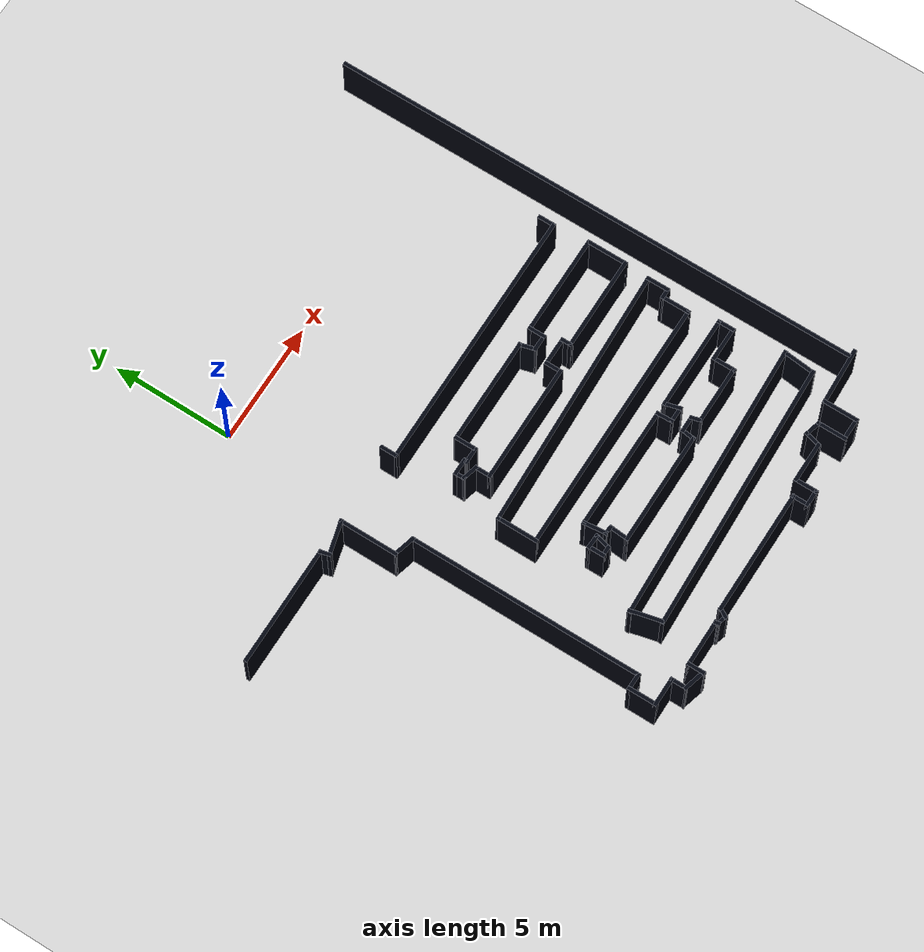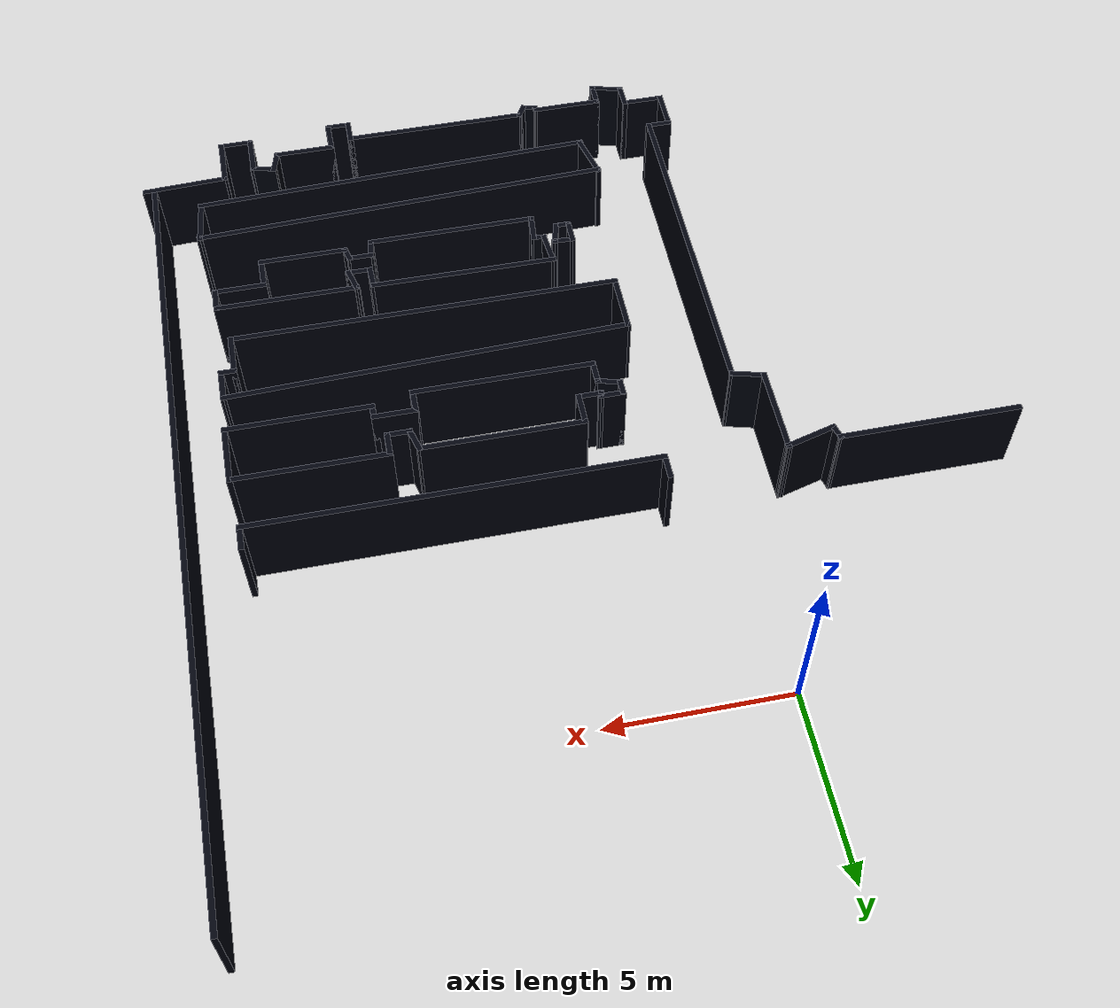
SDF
<sdf version="1.8">
 <world name="CDL_map">
  <model name="ground_plane">
   <static>1</static>
   <link name="link">
    <collision name="collision">
     <geometry><plane><normal>0 0 1</normal><size>100 100</size></plane></geometry>
    </collision>
    <visual name="visual">
     <geometry><plane><normal>0 0 1</normal><size>100 100</size></plane></geometry>
     <material>
      <ambient>0.8 0.8 0.8 1</ambient>
      <diffuse>0.8 0.8 0.8 1</diffuse>
      <specular>0.8 0.8 0.8 1</specular>
     </material>
     <plugin name="__default__" filename="__default__"/>
    </visual>
   </link>
   <plugin name="__default__" filename="__default__"/>
  </model>
  <model name="border">
   <pose>0 0 1 0 0 0</pose>
   <static>true</static>
   <link name="Wall_15">
    <pose>-4.98468 -5.83162 0 0 -0 0</pose>
    <static>true</static>
    <collision name="Wall_15_Collision"><geometry><box><size>5 0.15 2.5</size></box></geometry></collision>
    <visual name="Wall_15_Visual">
     <geometry><box><size>5 0.15 2.5</size></box></geometry>
     <material>
      <ambient>0.1 0.1 0.1 1</ambient>
      <diffuse>0 0.01 0.05 1</diffuse>
      <specular>0 0.01 0.05 1</specular>
     </material>
    </visual>
   </link>
   <link name="Wall_16">
    <pose>-2.51438 -6.00066 0 0 -0 -1.309</pose>
    <static>true</static>
    <collision name="Wall_16_Collision"><geometry><box><size>0.5 0.15 2.5</size></box></geometry></collision>
    <visual name="Wall_16_Visual">
     <geometry><box><size>0.5 0.15 2.5</size></box></geometry>
     <material>
      <ambient>0.1 0.1 0.1 1</ambient>
      <diffuse>0 0.01 0.05 1</diffuse>
      <specular>0 0.01 0.05 1</specular>
     </material>
    </visual>
   </link>
   <link name="Wall_17">
    <pose>-1.81709 -5.99499 0 0 -0 0.261799</pose>
    <static>true</static>
    <collision name="Wall_17_Collision"><geometry><box><size>1.5 0.15 2.5</size></box></geometry></collision>
    <visual name="Wall_17_Visual">
     <geometry><box><size>1.5 0.15 2.5</size></box></geometry>
     <material>
      <ambient>0.1 0.1 0.1 1</ambient>
      <diffuse>0 0.01 0.05 1</diffuse>
      <specular>0 0.01 0.05 1</specular>
     </material>
    </visual>
   </link>
   <link name="Wall_18">
    <pose>-1.16509 -6.99529 0 0 -0 -1.5708</pose>
    <static>true</static>
    <collision name="Wall_18_Collision"><geometry><box><size>2.5 0.15 2.5</size></box></geometry></collision>
    <visual name="Wall_18_Visual">
     <geometry><box><size>2.5 0.15 2.5</size></box></geometry>
     <material>
      <ambient>0.1 0.1 0.1 1</ambient>
      <diffuse>0 0.01 0.05 1</diffuse>
      <specular>0 0.01 0.05 1</specular>
     </material>
    </visual>
   </link>
   <link name="Wall_19">
    <pose>-0.754573 -8.28029 0 0 -0 -0.261799</pose>
    <static>true</static>
    <collision name="Wall_19_Collision"><geometry><box><size>1 0.15 2.5</size></box></geometry></collision>
    <visual name="Wall_19_Visual">
     <geometry><box><size>1 0.15 2.5</size></box></geometry>
     <material>
      <ambient>0.1 0.1 0.1 1</ambient>
      <diffuse>0 0.01 0.05 1</diffuse>
      <specular>0 0.01 0.05 1</specular>
     </material>
    </visual>
   </link>
   <link name="Wall_20">
    <pose>-0.344055 -13.1903 0 0 -0 -1.5708</pose>
    <static>true</static>
    <collision name="Wall_20_Collision"><geometry><box><size>9.75 0.15 2.5</size></box></geometry></collision>
    <visual name="Wall_20_Visual">
     <geometry><box><size>9.75 0.15 2.5</size></box></geometry>
     <material>
      <ambient>0.1 0.1 0.1 1</ambient>
      <diffuse>0 0.01 0.05 1</diffuse>
      <specular>0 0.01 0.05 1</specular>
     </material>
    </visual>
   </link>
   <link name="Wall_21">
    <pose>-0.644055 -17.9903 0 0 -0 3.14159</pose>
    <static>true</static>
    <collision name="Wall_21_Collision"><geometry><box><size>0.75 0.15 2.5</size></box></geometry></collision>
    <visual name="Wall_21_Visual">
     <geometry><box><size>0.75 0.15 2.5</size></box></geometry>
     <material>
      <ambient>0.1 0.1 0.1 1</ambient>
      <diffuse>0 0.01 0.05 1</diffuse>
      <specular>0 0.01 0.05 1</specular>
     </material>
    </visual>
   </link>
   <link name="Wall_22">
    <pose>-0.944055 -18.5403 0 0 -0 -1.5708</pose>
    <static>true</static>
    <collision name="Wall_22_Collision"><geometry><box><size>1.25 0.15 2.5</size></box></geometry></collision>
    <visual name="Wall_22_Visual">
     <geometry><box><size>1.25 0.15 2.5</size></box></geometry>
     <material>
      <ambient>0.1 0.1 0.1 1</ambient>
      <diffuse>0 0.01 0.05 1</diffuse>
      <specular>0 0.01 0.05 1</specular>
     </material>
    </visual>
   </link>
   <link name="Wall_23">
    <pose>-0.394055 -19.0903 0 0 -0 0</pose>
    <static>true</static>
    <collision name="Wall_23_Collision"><geometry><box><size>1.25 0.15 2.5</size></box></geometry></collision>
    <visual name="Wall_23_Visual">
     <geometry><box><size>1.25 0.15 2.5</size></box></geometry>
     <material>
      <ambient>0.1 0.1 0.1 1</ambient>
      <diffuse>0 0.01 0.05 1</diffuse>
      <specular>0 0.01 0.05 1</specular>
     </material>
    </visual>
   </link>
   <link name="Wall_231">
    <pose>12.8807 -5.82626 0 0 -0 -1.5708</pose>
    <static>true</static>
    <collision name="Wall_231_Collision"><geometry><box><size>0.75 0.15 2.5</size></box></geometry></collision>
    <visual name="Wall_231_Visual">
     <geometry><box><size>0.75 0.15 2.5</size></box></geometry>
     <material>
      <ambient>0.1 0.1 0.1 1</ambient>
      <diffuse>0 0.01 0.05 1</diffuse>
      <specular>0 0.01 0.05 1</specular>
     </material>
    </visual>
   </link>
   <link name="Wall_232">
    <pose>7.4557 -6.12626 0 0 -0 3.14159</pose>
    <static>true</static>
    <collision name="Wall_232_Collision"><geometry><box><size>11 0.15 2.5</size></box></geometry></collision>
    <visual name="Wall_232_Visual">
     <geometry><box><size>11 0.15 2.5</size></box></geometry>
     <material>
      <ambient>0.1 0.1 0.1 1</ambient>
      <diffuse>0 0.01 0.05 1</diffuse>
      <specular>0 0.01 0.05 1</specular>
     </material>
    </visual>
   </link>
   <link name="Wall_233">
    <pose>2.0307 -5.82626 0 0 -0 1.5708</pose>
    <static>true</static>
    <collision name="Wall_233_Collision"><geometry><box><size>0.75 0.15 2.5</size></box></geometry></collision>
    <visual name="Wall_233_Visual">
     <geometry><box><size>0.75 0.15 2.5</size></box></geometry>
     <material>
      <ambient>0.1 0.1 0.1 1</ambient>
      <diffuse>0 0.01 0.05 1</diffuse>
      <specular>0 0.01 0.05 1</specular>
     </material>
    </visual>
   </link>
   <link name="Wall_235">
    <pose>3.49579 -8.43866 0 0 -0 3.14159</pose>
    <static>true</static>
    <collision name="Wall_235_Collision"><geometry><box><size>0.75 0.15 2.5</size></box></geometry></collision>
    <visual name="Wall_235_Visual">
     <geometry><box><size>0.75 0.15 2.5</size></box></geometry>
     <material>
      <ambient>0.1 0.1 0.1 1</ambient>
      <diffuse>0 0.01 0.05 1</diffuse>
      <specular>0 0.01 0.05 1</specular>
     </material>
    </visual>
   </link>
   <link name="Wall_236">
    <pose>3.20873 -8.39036 0 0 -0 1.309</pose>
    <static>true</static>
    <collision name="Wall_236_Collision"><geometry><box><size>0.25 0.15 2.5</size></box></geometry></collision>
    <visual name="Wall_236_Visual">
     <geometry><box><size>0.25 0.15 2.5</size></box></geometry>
     <material>
      <ambient>0.1 0.1 0.1 1</ambient>
      <diffuse>0 0.01 0.05 1</diffuse>
      <specular>0 0.01 0.05 1</specular>
     </material>
    </visual>
   </link>
   <link name="Wall_237">
    <pose>2.92167 -8.34206 0 0 -0 3.14159</pose>
    <static>true</static>
    <collision name="Wall_237_Collision"><geometry><box><size>0.75 0.15 2.5</size></box></geometry></collision>
    <visual name="Wall_237_Visual">
     <geometry><box><size>0.75 0.15 2.5</size></box></geometry>
     <material>
      <ambient>0.1 0.1 0.1 1</ambient>
      <diffuse>0 0.01 0.05 1</diffuse>
      <specular>0 0.01 0.05 1</specular>
     </material>
    </visual>
   </link>
   <link name="Wall_238">
    <pose>2.62167 -8.51706 0 0 -0 -1.5708</pose>
    <static>true</static>
    <collision name="Wall_238_Collision"><geometry><box><size>0.5 0.15 2.5</size></box></geometry></collision>
    <visual name="Wall_238_Visual">
     <geometry><box><size>0.5 0.15 2.5</size></box></geometry>
     <material>
      <ambient>0.1 0.1 0.1 1</ambient>
      <diffuse>0 0.01 0.05 1</diffuse>
      <specular>0 0.01 0.05 1</specular>
     </material>
    </visual>
   </link>
   <link name="Wall_239">
    <pose>2.91145 -8.76971 0 0 -0 -0.261799</pose>
    <static>true</static>
    <collision name="Wall_239_Collision"><geometry><box><size>0.75 0.15 2.5</size></box></geometry></collision>
    <visual name="Wall_239_Visual">
     <geometry><box><size>0.75 0.15 2.5</size></box></geometry>
     <material>
      <ambient>0.1 0.1 0.1 1</ambient>
      <diffuse>0 0.01 0.05 1</diffuse>
      <specular>0 0.01 0.05 1</specular>
     </material>
    </visual>
   </link>
   <link name="Wall_24">
    <pose>0.155945 -19.3903 0 0 -0 -1.5708</pose>
    <static>true</static>
    <collision name="Wall_24_Collision"><geometry><box><size>0.75 0.15 2.5</size></box></geometry></collision>
    <visual name="Wall_24_Visual">
     <geometry><box><size>0.75 0.15 2.5</size></box></geometry>
     <material>
      <ambient>0.1 0.1 0.1 1</ambient>
      <diffuse>0 0.01 0.05 1</diffuse>
      <specular>0 0.01 0.05 1</specular>
     </material>
    </visual>
   </link>
   <link name="Wall_240">
    <pose>3.20123 -9.14735 0 0 -0 -1.5708</pose>
    <static>true</static>
    <collision name="Wall_240_Collision"><geometry><box><size>0.75 0.15 2.5</size></box></geometry></collision>
    <visual name="Wall_240_Visual">
     <geometry><box><size>0.75 0.15 2.5</size></box></geometry>
     <material>
      <ambient>0.1 0.1 0.1 1</ambient>
      <diffuse>0 0.01 0.05 1</diffuse>
      <specular>0 0.01 0.05 1</specular>
     </material>
    </visual>
   </link>
   <link name="Wall_241">
    <pose>5.62623 -9.44735 0 0 -0 0</pose>
    <static>true</static>
    <collision name="Wall_241_Collision"><geometry><box><size>5 0.15 2.5</size></box></geometry></collision>
    <visual name="Wall_241_Visual">
     <geometry><box><size>5 0.15 2.5</size></box></geometry>
     <material>
      <ambient>0.1 0.1 0.1 1</ambient>
      <diffuse>0 0.01 0.05 1</diffuse>
      <specular>0 0.01 0.05 1</specular>
     </material>
    </visual>
   </link>
   <link name="Wall_242">
    <pose>8.05123 -9.14735 0 0 -0 1.5708</pose>
    <static>true</static>
    <collision name="Wall_242_Collision"><geometry><box><size>0.75 0.15 2.5</size></box></geometry></collision>
    <visual name="Wall_242_Visual">
     <geometry><box><size>0.75 0.15 2.5</size></box></geometry>
     <material>
      <ambient>0.1 0.1 0.1 1</ambient>
      <diffuse>0 0.01 0.05 1</diffuse>
      <specular>0 0.01 0.05 1</specular>
     </material>
    </visual>
   </link>
   <link name="Wall_243">
    <pose>8.60123 -8.84735 0 0 -0 0</pose>
    <static>true</static>
    <collision name="Wall_243_Collision"><geometry><box><size>1.25 0.15 2.5</size></box></geometry></collision>
    <visual name="Wall_243_Visual">
     <geometry><box><size>1.25 0.15 2.5</size></box></geometry>
     <material>
      <ambient>0.1 0.1 0.1 1</ambient>
      <diffuse>0 0.01 0.05 1</diffuse>
      <specular>0 0.01 0.05 1</specular>
     </material>
    </visual>
   </link>
   <link name="Wall_244">
    <pose>9.15123 -9.02235 0 0 -0 -1.5708</pose>
    <static>true</static>
    <collision name="Wall_244_Collision"><geometry><box><size>0.5 0.15 2.5</size></box></geometry></collision>
    <visual name="Wall_244_Visual">
     <geometry><box><size>0.5 0.15 2.5</size></box></geometry>
     <material>
      <ambient>0.1 0.1 0.1 1</ambient>
      <diffuse>0 0.01 0.05 1</diffuse>
      <specular>0 0.01 0.05 1</specular>
     </material>
    </visual>
   </link>
   <link name="Wall_245">
    <pose>11.0762 -9.19735 0 0 -0 0</pose>
    <static>true</static>
    <collision name="Wall_245_Collision"><geometry><box><size>4 0.15 2.5</size></box></geometry></collision>
    <visual name="Wall_245_Visual">
     <geometry><box><size>4 0.15 2.5</size></box></geometry>
     <material>
      <ambient>0.1 0.1 0.1 1</ambient>
      <diffuse>0 0.01 0.05 1</diffuse>
      <specular>0 0.01 0.05 1</specular>
     </material>
    </visual>
   </link>
   <link name="Wall_246">
    <pose>13.0012 -8.39735 0 0 -0 1.5708</pose>
    <static>true</static>
    <collision name="Wall_246_Collision"><geometry><box><size>1.75 0.15 2.5</size></box></geometry></collision>
    <visual name="Wall_246_Visual">
     <geometry><box><size>1.75 0.15 2.5</size></box></geometry>
     <material>
      <ambient>0.1 0.1 0.1 1</ambient>
      <diffuse>0 0.01 0.05 1</diffuse>
      <specular>0 0.01 0.05 1</specular>
     </material>
    </visual>
   </link>
   <link name="Wall_247">
    <pose>10.9512 -7.59735 0 0 -0 3.14159</pose>
    <static>true</static>
    <collision name="Wall_247_Collision"><geometry><box><size>4.25 0.15 2.5</size></box></geometry></collision>
    <visual name="Wall_247_Visual">
     <geometry><box><size>4.25 0.15 2.5</size></box></geometry>
     <material>
      <ambient>0.1 0.1 0.1 1</ambient>
      <diffuse>0 0.01 0.05 1</diffuse>
      <specular>0 0.01 0.05 1</specular>
     </material>
    </visual>
   </link>
   <link name="Wall_248">
    <pose>8.90123 -7.89735 0 0 -0 -1.5708</pose>
    <static>true</static>
    <collision name="Wall_248_Collision"><geometry><box><size>0.75 0.15 2.5</size></box></geometry></collision>
    <visual name="Wall_248_Visual">
     <geometry><box><size>0.75 0.15 2.5</size></box></geometry>
     <material>
      <ambient>0.1 0.1 0.1 1</ambient>
      <diffuse>0 0.01 0.05 1</diffuse>
      <specular>0 0.01 0.05 1</specular>
     </material>
    </visual>
   </link>
   <link name="Wall_249">
    <pose>8.60123 -8.19735 0 0 -0 3.14159</pose>
    <static>true</static>
    <collision name="Wall_249_Collision"><geometry><box><size>0.75 0.15 2.5</size></box></geometry></collision>
    <visual name="Wall_249_Visual">
     <geometry><box><size>0.75 0.15 2.5</size></box></geometry>
     <material>
      <ambient>0.1 0.1 0.1 1</ambient>
      <diffuse>0 0.01 0.05 1</diffuse>
      <specular>0 0.01 0.05 1</specular>
     </material>
    </visual>
   </link>
   <link name="Wall_25">
    <pose>0.566464 -19.8003 0 0 -0 -0.261799</pose>
    <static>true</static>
    <collision name="Wall_25_Collision"><geometry><box><size>1 0.15 2.5</size></box></geometry></collision>
    <visual name="Wall_25_Visual">
     <geometry><box><size>1 0.15 2.5</size></box></geometry>
     <material>
      <ambient>0.1 0.1 0.1 1</ambient>
      <diffuse>0 0.01 0.05 1</diffuse>
      <specular>0 0.01 0.05 1</specular>
     </material>
    </visual>
   </link>
   <link name="Wall_250">
    <pose>8.22358 -7.90758 0 0 -0 1.8326</pose>
    <static>true</static>
    <collision name="Wall_250_Collision"><geometry><box><size>0.75 0.15 2.5</size></box></geometry></collision>
    <visual name="Wall_250_Visual">
     <geometry><box><size>0.75 0.15 2.5</size></box></geometry>
     <material>
      <ambient>0.1 0.1 0.1 1</ambient>
      <diffuse>0 0.01 0.05 1</diffuse>
      <specular>0 0.01 0.05 1</specular>
     </material>
    </visual>
   </link>
   <link name="Wall_251">
    <pose>5.97094 -7.6178 0 0 -0 3.14159</pose>
    <static>true</static>
    <collision name="Wall_251_Collision"><geometry><box><size>4.5 0.15 2.5</size></box></geometry></collision>
    <visual name="Wall_251_Visual">
     <geometry><box><size>4.5 0.15 2.5</size></box></geometry>
     <material>
      <ambient>0.1 0.1 0.1 1</ambient>
      <diffuse>0 0.01 0.05 1</diffuse>
      <specular>0 0.01 0.05 1</specular>
     </material>
    </visual>
   </link>
   <link name="Wall_252">
    <pose>3.79586 -8.02823 0 0 -0 -1.57097</pose>
    <static>true</static>
    <collision name="Wall_252_Collision">
     <geometry><box><size>0.970857 0.15 2.5</size></box></geometry>
    </collision>
    <visual name="Wall_252_Visual">
     <geometry><box><size>0.970857 0.15 2.5</size></box></geometry>
     <material>
      <ambient>0.1 0.1 0.1 1</ambient>
      <diffuse>0 0.01 0.05 1</diffuse>
      <specular>0 0.01 0.05 1</specular>
     </material>
    </visual>
   </link>
   <link name="Wall_254">
    <pose>1.98946 -11.3875 0 0 -0 -1.5708</pose>
    <static>true</static>
    <collision name="Wall_254_Collision"><geometry><box><size>1.75 0.15 2.5</size></box></geometry></collision>
    <visual name="Wall_254_Visual">
     <geometry><box><size>1.75 0.15 2.5</size></box></geometry>
     <material>
      <ambient>0.1 0.1 0.1 1</ambient>
      <diffuse>0 0.01 0.05 1</diffuse>
      <specular>0 0.01 0.05 1</specular>
     </material>
    </visual>
   </link>
   <link name="Wall_255">
    <pose>7.28946 -12.1875 0 0 -0 0</pose>
    <static>true</static>
    <collision name="Wall_255_Collision"><geometry><box><size>10.75 0.15 2.5</size></box></geometry></collision>
    <visual name="Wall_255_Visual">
     <geometry><box><size>10.75 0.15 2.5</size></box></geometry>
     <material>
      <ambient>0.1 0.1 0.1 1</ambient>
      <diffuse>0 0.01 0.05 1</diffuse>
      <specular>0 0.01 0.05 1</specular>
     </material>
    </visual>
   </link>
   <link name="Wall_256">
    <pose>12.5895 -11.6375 0 0 -0 1.5708</pose>
    <static>true</static>
    <collision name="Wall_256_Collision"><geometry><box><size>1.25 0.15 2.5</size></box></geometry></collision>
    <visual name="Wall_256_Visual">
     <geometry><box><size>1.25 0.15 2.5</size></box></geometry>
     <material>
      <ambient>0.1 0.1 0.1 1</ambient>
      <diffuse>0 0.01 0.05 1</diffuse>
      <specular>0 0.01 0.05 1</specular>
     </material>
    </visual>
   </link>
   <link name="Wall_257">
    <pose>12.7645 -11.0875 0 0 -0 0</pose>
    <static>true</static>
    <collision name="Wall_257_Collision"><geometry><box><size>0.5 0.15 2.5</size></box></geometry></collision>
    <visual name="Wall_257_Visual">
     <geometry><box><size>0.5 0.15 2.5</size></box></geometry>
     <material>
      <ambient>0.1 0.1 0.1 1</ambient>
      <diffuse>0 0.01 0.05 1</diffuse>
      <specular>0 0.01 0.05 1</specular>
     </material>
    </visual>
   </link>
   <link name="Wall_258">
    <pose>12.9395 -10.6625 0 0 -0 1.5708</pose>
    <static>true</static>
    <collision name="Wall_258_Collision"><geometry><box><size>1 0.15 2.5</size></box></geometry></collision>
    <visual name="Wall_258_Visual">
     <geometry><box><size>1 0.15 2.5</size></box></geometry>
     <material>
      <ambient>0.1 0.1 0.1 1</ambient>
      <diffuse>0 0.01 0.05 1</diffuse>
      <specular>0 0.01 0.05 1</specular>
     </material>
    </visual>
   </link>
   <link name="Wall_259">
    <pose>7.46446 -10.4125 0 0 -0 -3.10964</pose>
    <static>true</static>
    <collision name="Wall_259_Collision"><geometry><box><size>11.1056 0.15 2.5</size></box></geometry></collision>
    <visual name="Wall_259_Visual">
     <geometry><box><size>11.1056 0.15 2.5</size></box></geometry>
     <material>
      <ambient>0.1 0.1 0.1 1</ambient>
      <diffuse>0 0.01 0.05 1</diffuse>
      <specular>0 0.01 0.05 1</specular>
     </material>
    </visual>
   </link>
   <link name="Wall_26">
    <pose>0.976982 -19.6103 0 0 -0 1.5708</pose>
    <static>true</static>
    <collision name="Wall_26_Collision"><geometry><box><size>0.75 0.15 2.5</size></box></geometry></collision>
    <visual name="Wall_26_Visual">
     <geometry><box><size>0.75 0.15 2.5</size></box></geometry>
     <material>
      <ambient>0.1 0.1 0.1 1</ambient>
      <diffuse>0 0.01 0.05 1</diffuse>
      <specular>0 0.01 0.05 1</specular>
     </material>
    </visual>
   </link>
   <link name="Wall_261">
    <pose>2.8255 -14.2439 0 0 -0 -1.5708</pose>
    <static>true</static>
    <collision name="Wall_261_Collision"><geometry><box><size>0.75 0.15 2.5</size></box></geometry></collision>
    <visual name="Wall_261_Visual">
     <geometry><box><size>0.75 0.15 2.5</size></box></geometry>
     <material>
      <ambient>0.1 0.1 0.1 1</ambient>
      <diffuse>0 0.01 0.05 1</diffuse>
      <specular>0 0.01 0.05 1</specular>
     </material>
    </visual>
   </link>
   <link name="Wall_262">
    <pose>3.0005 -14.5439 0 0 -0 0</pose>
    <static>true</static>
    <collision name="Wall_262_Collision"><geometry><box><size>0.5 0.15 2.5</size></box></geometry></collision>
    <visual name="Wall_262_Visual">
     <geometry><box><size>0.5 0.15 2.5</size></box></geometry>
     <material>
      <ambient>0.1 0.1 0.1 1</ambient>
      <diffuse>0 0.01 0.05 1</diffuse>
      <specular>0 0.01 0.05 1</specular>
     </material>
    </visual>
   </link>
   <link name="Wall_263">
    <pose>3.25314 -14.2542 0 0 -0 1.309</pose>
    <static>true</static>
    <collision name="Wall_263_Collision"><geometry><box><size>0.75 0.15 2.5</size></box></geometry></collision>
    <visual name="Wall_263_Visual">
     <geometry><box><size>0.75 0.15 2.5</size></box></geometry>
     <material>
      <ambient>0.1 0.1 0.1 1</ambient>
      <diffuse>0 0.01 0.05 1</diffuse>
      <specular>0 0.01 0.05 1</specular>
     </material>
    </visual>
   </link>
   <link name="Wall_264">
    <pose>3.07814 -13.9542 0 0 -0 3.10115</pose>
    <static>true</static>
    <collision name="Wall_264_Collision">
     <geometry><box><size>0.655705 0.15 2.5</size></box></geometry>
    </collision>
    <visual name="Wall_264_Visual">
     <geometry><box><size>0.655705 0.15 2.5</size></box></geometry>
     <material>
      <ambient>0.1 0.1 0.1 1</ambient>
      <diffuse>0 0.01 0.05 1</diffuse>
      <specular>0 0.01 0.05 1</specular>
     </material>
    </visual>
   </link>
   <link name="Wall_266">
    <pose>6.02506 -13.3231 0 0 -0 -0.007308</pose>
    <static>true</static>
    <collision name="Wall_266_Collision"><geometry><box><size>5.19685 0.15 2.5</size></box></geometry></collision>
    <visual name="Wall_266_Visual">
     <geometry><box><size>5.19685 0.15 2.5</size></box></geometry>
     <material>
      <ambient>0.1 0.1 0.1 1</ambient>
      <diffuse>0 0.01 0.05 1</diffuse>
      <specular>0 0.01 0.05 1</specular>
     </material>
    </visual>
   </link>
   <link name="Wall_267">
    <pose>8.57074 -13.6374 0 0 -0 -1.53693</pose>
    <static>true</static>
    <collision name="Wall_267_Collision"><geometry><box><size>0.74219 0.15 2.5</size></box></geometry></collision>
    <visual name="Wall_267_Visual">
     <geometry><box><size>0.74219 0.15 2.5</size></box></geometry>
     <material>
      <ambient>0.1 0.1 0.1 1</ambient>
      <diffuse>0 0.01 0.05 1</diffuse>
      <specular>0 0.01 0.05 1</specular>
     </material>
    </visual>
   </link>
   <link name="Wall_268">
    <pose>8.88076 -13.9333 0 0 -0 0</pose>
    <static>true</static>
    <collision name="Wall_268_Collision"><geometry><box><size>0.75 0.15 2.5</size></box></geometry></collision>
    <visual name="Wall_268_Visual">
     <geometry><box><size>0.75 0.15 2.5</size></box></geometry>
     <material>
      <ambient>0.1 0.1 0.1 1</ambient>
      <diffuse>0 0.01 0.05 1</diffuse>
      <specular>0 0.01 0.05 1</specular>
     </material>
    </visual>
   </link>
   <link name="Wall_269">
    <pose>9.10312 -13.6436 0 0 -0 1.8326</pose>
    <static>true</static>
    <collision name="Wall_269_Collision"><geometry><box><size>0.75 0.15 2.5</size></box></geometry></collision>
    <visual name="Wall_269_Visual">
     <geometry><box><size>0.75 0.15 2.5</size></box></geometry>
     <material>
      <ambient>0.1 0.1 0.1 1</ambient>
      <diffuse>0 0.01 0.05 1</diffuse>
      <specular>0 0.01 0.05 1</specular>
     </material>
    </visual>
   </link>
   <link name="Wall_27">
    <pose>1.90198 -19.3103 0 0 -0 0</pose>
    <static>true</static>
    <collision name="Wall_27_Collision"><geometry><box><size>2 0.15 2.5</size></box></geometry></collision>
    <visual name="Wall_27_Visual">
     <geometry><box><size>2 0.15 2.5</size></box></geometry>
     <material>
      <ambient>0.1 0.1 0.1 1</ambient>
      <diffuse>0 0.01 0.05 1</diffuse>
      <specular>0 0.01 0.05 1</specular>
     </material>
    </visual>
   </link>
   <link name="Wall_270">
    <pose>10.9505 -13.3538 0 0 -0 0</pose>
    <static>true</static>
    <collision name="Wall_270_Collision"><geometry><box><size>4 0.15 2.5</size></box></geometry></collision>
    <visual name="Wall_270_Visual">
     <geometry><box><size>4 0.15 2.5</size></box></geometry>
     <material>
      <ambient>0.1 0.1 0.1 1</ambient>
      <diffuse>0 0.01 0.05 1</diffuse>
      <specular>0 0.01 0.05 1</specular>
     </material>
    </visual>
   </link>
   <link name="Wall_271">
    <pose>12.8755 -13.6538 0 0 -0 -1.5708</pose>
    <static>true</static>
    <collision name="Wall_271_Collision"><geometry><box><size>0.75 0.15 2.5</size></box></geometry></collision>
    <visual name="Wall_271_Visual">
     <geometry><box><size>0.75 0.15 2.5</size></box></geometry>
     <material>
      <ambient>0.1 0.1 0.1 1</ambient>
      <diffuse>0 0.01 0.05 1</diffuse>
      <specular>0 0.01 0.05 1</specular>
     </material>
    </visual>
   </link>
   <link name="Wall_272">
    <pose>12.2005 -13.9538 0 0 -0 3.14159</pose>
    <static>true</static>
    <collision name="Wall_272_Collision"><geometry><box><size>1.5 0.15 2.5</size></box></geometry></collision>
    <visual name="Wall_272_Visual">
     <geometry><box><size>1.5 0.15 2.5</size></box></geometry>
     <material>
      <ambient>0.1 0.1 0.1 1</ambient>
      <diffuse>0 0.01 0.05 1</diffuse>
      <specular>0 0.01 0.05 1</specular>
     </material>
    </visual>
   </link>
   <link name="Wall_273">
    <pose>11.5255 -14.3788 0 0 -0 -1.5708</pose>
    <static>true</static>
    <collision name="Wall_273_Collision"><geometry><box><size>1 0.15 2.5</size></box></geometry></collision>
    <visual name="Wall_273_Visual">
     <geometry><box><size>1 0.15 2.5</size></box></geometry>
     <material>
      <ambient>0.1 0.1 0.1 1</ambient>
      <diffuse>0 0.01 0.05 1</diffuse>
      <specular>0 0.01 0.05 1</specular>
     </material>
    </visual>
   </link>
   <link name="Wall_274">
    <pose>10.3505 -14.8038 0 0 -0 3.14159</pose>
    <static>true</static>
    <collision name="Wall_274_Collision"><geometry><box><size>2.5 0.15 2.5</size></box></geometry></collision>
    <visual name="Wall_274_Visual">
     <geometry><box><size>2.5 0.15 2.5</size></box></geometry>
     <material>
      <ambient>0.1 0.1 0.1 1</ambient>
      <diffuse>0 0.01 0.05 1</diffuse>
      <specular>0 0.01 0.05 1</specular>
     </material>
    </visual>
   </link>
   <link name="Wall_275">
    <pose>9.13018 -14.6348 0 0 -0 1.8326</pose>
    <static>true</static>
    <collision name="Wall_275_Collision"><geometry><box><size>0.5 0.15 2.5</size></box></geometry></collision>
    <visual name="Wall_275_Visual">
     <geometry><box><size>0.5 0.15 2.5</size></box></geometry>
     <material>
      <ambient>0.1 0.1 0.1 1</ambient>
      <diffuse>0 0.01 0.05 1</diffuse>
      <specular>0 0.01 0.05 1</specular>
     </material>
    </visual>
   </link>
   <link name="Wall_276">
    <pose>8.78488 -14.4657 0 0 -0 3.14159</pose>
    <static>true</static>
    <collision name="Wall_276_Collision"><geometry><box><size>0.75 0.15 2.5</size></box></geometry></collision>
    <visual name="Wall_276_Visual">
     <geometry><box><size>0.75 0.15 2.5</size></box></geometry>
     <material>
      <ambient>0.1 0.1 0.1 1</ambient>
      <diffuse>0 0.01 0.05 1</diffuse>
      <specular>0 0.01 0.05 1</specular>
     </material>
    </visual>
   </link>
   <link name="Wall_277">
    <pose>8.45415 -14.7022 0 0 -0 -1.70005</pose>
    <static>true</static>
    <collision name="Wall_277_Collision">
     <geometry><box><size>0.626925 0.15 2.5</size></box></geometry>
    </collision>
    <visual name="Wall_277_Visual">
     <geometry><box><size>0.626925 0.15 2.5</size></box></geometry>
     <material>
      <ambient>0.1 0.1 0.1 1</ambient>
      <diffuse>0 0.01 0.05 1</diffuse>
      <specular>0 0.01 0.05 1</specular>
     </material>
    </visual>
   </link>
   <link name="Wall_278">
    <pose>6.12341 -14.951 0 0 -0 3.14159</pose>
    <static>true</static>
    <collision name="Wall_278_Collision"><geometry><box><size>4.75 0.15 2.5</size></box></geometry></collision>
    <visual name="Wall_278_Visual">
     <geometry><box><size>4.75 0.15 2.5</size></box></geometry>
     <material>
      <ambient>0.1 0.1 0.1 1</ambient>
      <diffuse>0 0.01 0.05 1</diffuse>
      <specular>0 0.01 0.05 1</specular>
     </material>
    </visual>
   </link>
   <link name="Wall_279">
    <pose>3.85415 -14.5772 0 0 -0 1.48597</pose>
    <static>true</static>
    <collision name="Wall_279_Collision">
     <geometry><box><size>0.874618 0.15 2.5</size></box></geometry>
    </collision>
    <visual name="Wall_279_Visual">
     <geometry><box><size>0.874618 0.15 2.5</size></box></geometry>
     <material>
      <ambient>0.1 0.1 0.1 1</ambient>
      <diffuse>0 0.01 0.05 1</diffuse>
      <specular>0 0.01 0.05 1</specular>
     </material>
    </visual>
   </link>
   <link name="Wall_28">
    <pose>2.83992 -19.3586 0 0 -0 -1.309</pose>
    <static>true</static>
    <collision name="Wall_28_Collision"><geometry><box><size>0.25 0.15 2.5</size></box></geometry></collision>
    <visual name="Wall_28_Visual">
     <geometry><box><size>0.25 0.15 2.5</size></box></geometry>
     <material>
      <ambient>0.1 0.1 0.1 1</ambient>
      <diffuse>0 0.01 0.05 1</diffuse>
      <specular>0 0.01 0.05 1</specular>
     </material>
    </visual>
   </link>
   <link name="Wall_280">
    <pose>3.73653 -14.1973 0 0 -0 3.01792</pose>
    <static>true</static>
    <collision name="Wall_280_Collision">
     <geometry><box><size>0.448999 0.15 2.5</size></box></geometry>
    </collision>
    <visual name="Wall_280_Visual">
     <geometry><box><size>0.448999 0.15 2.5</size></box></geometry>
     <material>
      <ambient>0.1 0.1 0.1 1</ambient>
      <diffuse>0 0.01 0.05 1</diffuse>
      <specular>0 0.01 0.05 1</specular>
     </material>
    </visual>
   </link>
   <link name="Wall_281">
    <pose>3.55723 -13.7417 0 0 -0 1.66938</pose>
    <static>true</static>
    <collision name="Wall_281_Collision"><geometry><box><size>1.02849 0.15 2.5</size></box></geometry></collision>
    <visual name="Wall_281_Visual">
     <geometry><box><size>1.02849 0.15 2.5</size></box></geometry>
     <material>
      <ambient>0.1 0.1 0.1 1</ambient>
      <diffuse>0 0.01 0.05 1</diffuse>
      <specular>0 0.01 0.05 1</specular>
     </material>
    </visual>
   </link>
   <link name="Wall_283">
    <pose>1.68755 -17.0586 0 0 -0 -1.3373</pose>
    <static>true</static>
    <collision name="Wall_283_Collision"><geometry><box><size>1.38979 0.15 2.5</size></box></geometry></collision>
    <visual name="Wall_283_Visual">
     <geometry><box><size>1.38979 0.15 2.5</size></box></geometry>
     <material>
      <ambient>0.1 0.1 0.1 1</ambient>
      <diffuse>0 0.01 0.05 1</diffuse>
      <specular>0 0.01 0.05 1</specular>
     </material>
    </visual>
   </link>
   <link name="Wall_284">
    <pose>7.41633 -17.5062 0 0 -0 0.035336</pose>
    <static>true</static>
    <collision name="Wall_284_Collision"><geometry><box><size>11.356 0.15 2.5</size></box></geometry></collision>
    <visual name="Wall_284_Visual">
     <geometry><box><size>11.356 0.15 2.5</size></box></geometry>
     <material>
      <ambient>0.1 0.1 0.1 1</ambient>
      <diffuse>0 0.01 0.05 1</diffuse>
      <specular>0 0.01 0.05 1</specular>
     </material>
    </visual>
   </link>
   <link name="Wall_285">
    <pose>13.0653 -16.6779 0 0 -0 1.4702</pose>
    <static>true</static>
    <collision name="Wall_285_Collision"><geometry><box><size>1.41707 0.15 2.5</size></box></geometry></collision>
    <visual name="Wall_285_Visual">
     <geometry><box><size>1.41707 0.15 2.5</size></box></geometry>
     <material>
      <ambient>0.1 0.1 0.1 1</ambient>
      <diffuse>0 0.01 0.05 1</diffuse>
      <specular>0 0.01 0.05 1</specular>
     </material>
    </visual>
   </link>
   <link name="Wall_286">
    <pose>7.33652 -16.2728 0 0 -0 -3.10283</pose>
    <static>true</static>
    <collision name="Wall_286_Collision"><geometry><box><size>11.7718 0.15 2.5</size></box></geometry></collision>
    <visual name="Wall_286_Visual">
     <geometry><box><size>11.7718 0.15 2.5</size></box></geometry>
     <material>
      <ambient>0.1 0.1 0.1 1</ambient>
      <diffuse>0 0.01 0.05 1</diffuse>
      <specular>0 0.01 0.05 1</specular>
     </material>
    </visual>
   </link>
   <link name="Wall_29">
    <pose>3.0219 -19.4522 0 0 -0 -0.261799</pose>
    <static>true</static>
    <collision name="Wall_29_Collision"><geometry><box><size>0.5 0.15 2.5</size></box></geometry></collision>
    <visual name="Wall_29_Visual">
     <geometry><box><size>0.5 0.15 2.5</size></box></geometry>
     <material>
      <ambient>0.1 0.1 0.1 1</ambient>
      <diffuse>0 0.01 0.05 1</diffuse>
      <specular>0 0.01 0.05 1</specular>
     </material>
    </visual>
   </link>
   <link name="Wall_30">
    <pose>3.27844 -19.3459 0 0 -0 1.0472</pose>
    <static>true</static>
    <collision name="Wall_30_Collision"><geometry><box><size>0.5 0.15 2.5</size></box></geometry></collision>
    <visual name="Wall_30_Visual">
     <geometry><box><size>0.5 0.15 2.5</size></box></geometry>
     <material>
      <ambient>0.1 0.1 0.1 1</ambient>
      <diffuse>0 0.01 0.05 1</diffuse>
      <specular>0 0.01 0.05 1</specular>
     </material>
    </visual>
   </link>
   <link name="Wall_31">
    <pose>5.91594 -19.1944 0 0 -0 0</pose>
    <static>true</static>
    <collision name="Wall_31_Collision"><geometry><box><size>5.25 0.15 2.5</size></box></geometry></collision>
    <visual name="Wall_31_Visual">
     <geometry><box><size>5.25 0.15 2.5</size></box></geometry>
     <material>
      <ambient>0.1 0.1 0.1 1</ambient>
      <diffuse>0 0.01 0.05 1</diffuse>
      <specular>0 0.01 0.05 1</specular>
     </material>
    </visual>
   </link>
   <link name="Wall_32">
    <pose>8.46594 -19.4944 0 0 -0 -1.5708</pose>
    <static>true</static>
    <collision name="Wall_32_Collision"><geometry><box><size>0.75 0.15 2.5</size></box></geometry></collision>
    <visual name="Wall_32_Visual">
     <geometry><box><size>0.75 0.15 2.5</size></box></geometry>
     <material>
      <ambient>0.1 0.1 0.1 1</ambient>
      <diffuse>0 0.01 0.05 1</diffuse>
      <specular>0 0.01 0.05 1</specular>
     </material>
    </visual>
   </link>
   <link name="Wall_33">
    <pose>8.76594 -19.7944 0 0 -0 0</pose>
    <static>true</static>
    <collision name="Wall_33_Collision"><geometry><box><size>0.75 0.15 2.5</size></box></geometry></collision>
    <visual name="Wall_33_Visual">
     <geometry><box><size>0.75 0.15 2.5</size></box></geometry>
     <material>
      <ambient>0.1 0.1 0.1 1</ambient>
      <diffuse>0 0.01 0.05 1</diffuse>
      <specular>0 0.01 0.05 1</specular>
     </material>
    </visual>
   </link>
   <link name="Wall_34">
    <pose>9.06594 -19.3694 0 0 -0 1.5708</pose>
    <static>true</static>
    <collision name="Wall_34_Collision"><geometry><box><size>1 0.15 2.5</size></box></geometry></collision>
    <visual name="Wall_34_Visual">
     <geometry><box><size>1 0.15 2.5</size></box></geometry>
     <material>
      <ambient>0.1 0.1 0.1 1</ambient>
      <diffuse>0 0.01 0.05 1</diffuse>
      <specular>0 0.01 0.05 1</specular>
     </material>
    </visual>
   </link>
   <link name="Wall_35">
    <pose>9.86594 -18.9444 0 0 -0 0</pose>
    <static>true</static>
    <collision name="Wall_35_Collision"><geometry><box><size>1.75 0.15 2.5</size></box></geometry></collision>
    <visual name="Wall_35_Visual">
     <geometry><box><size>1.75 0.15 2.5</size></box></geometry>
     <material>
      <ambient>0.1 0.1 0.1 1</ambient>
      <diffuse>0 0.01 0.05 1</diffuse>
      <specular>0 0.01 0.05 1</specular>
     </material>
    </visual>
   </link>
   <link name="Wall_36">
    <pose>10.7436 -18.6546 0 0 -0 1.309</pose>
    <static>true</static>
    <collision name="Wall_36_Collision"><geometry><box><size>0.75 0.15 2.5</size></box></geometry></collision>
    <visual name="Wall_36_Visual">
     <geometry><box><size>0.75 0.15 2.5</size></box></geometry>
     <material>
      <ambient>0.1 0.1 0.1 1</ambient>
      <diffuse>0 0.01 0.05 1</diffuse>
      <specular>0 0.01 0.05 1</specular>
     </material>
    </visual>
   </link>
   <link name="Wall_37">
    <pose>11.111 -18.4424 0 0 -0 -0.261799</pose>
    <static>true</static>
    <collision name="Wall_37_Collision"><geometry><box><size>0.75 0.15 2.5</size></box></geometry></collision>
    <visual name="Wall_37_Visual">
     <geometry><box><size>0.75 0.15 2.5</size></box></geometry>
     <material>
      <ambient>0.1 0.1 0.1 1</ambient>
      <diffuse>0 0.01 0.05 1</diffuse>
      <specular>0 0.01 0.05 1</specular>
     </material>
    </visual>
   </link>
   <link name="Wall_38">
    <pose>11.4008 -19.0701 0 0 -0 -1.5708</pose>
    <static>true</static>
    <collision name="Wall_38_Collision"><geometry><box><size>1.25 0.15 2.5</size></box></geometry></collision>
    <visual name="Wall_38_Visual">
     <geometry><box><size>1.25 0.15 2.5</size></box></geometry>
     <material>
      <ambient>0.1 0.1 0.1 1</ambient>
      <diffuse>0 0.01 0.05 1</diffuse>
      <specular>0 0.01 0.05 1</specular>
     </material>
    </visual>
   </link>
   <link name="Wall_39">
    <pose>11.8258 -19.6201 0 0 -0 0</pose>
    <static>true</static>
    <collision name="Wall_39_Collision"><geometry><box><size>1 0.15 2.5</size></box></geometry></collision>
    <visual name="Wall_39_Visual">
     <geometry><box><size>1 0.15 2.5</size></box></geometry>
     <material>
      <ambient>0.1 0.1 0.1 1</ambient>
      <diffuse>0 0.01 0.05 1</diffuse>
      <specular>0 0.01 0.05 1</specular>
     </material>
    </visual>
   </link>
   <link name="Wall_40">
    <pose>12.2508 -18.9451 0 0 -0 1.5708</pose>
    <static>true</static>
    <collision name="Wall_40_Collision"><geometry><box><size>1.5 0.15 2.5</size></box></geometry></collision>
    <visual name="Wall_40_Visual">
     <geometry><box><size>1.5 0.15 2.5</size></box></geometry>
     <material>
      <ambient>0.1 0.1 0.1 1</ambient>
      <diffuse>0 0.01 0.05 1</diffuse>
      <specular>0 0.01 0.05 1</specular>
     </material>
    </visual>
   </link>
   <link name="Wall_49">
    <pose>13.3974 -18.2233 0 0 -0 0.040822</pose>
    <static>true</static>
    <collision name="Wall_49_Collision"><geometry><box><size>2.4452 0.15 2.5</size></box></geometry></collision>
    <visual name="Wall_49_Visual">
     <geometry><box><size>2.4452 0.15 2.5</size></box></geometry>
     <material>
      <ambient>0.1 0.1 0.1 1</ambient>
      <diffuse>0 0.01 0.05 1</diffuse>
      <specular>0 0.01 0.05 1</specular>
     </material>
    </visual>
   </link>
   <link name="Wall_56">
    <pose>14.2854 -7.01986 0 0 -0 -1.57033</pose>
    <static>true</static>
    <collision name="Wall_56_Collision"><geometry><box><size>22.2799 0.15 2.5</size></box></geometry></collision>
    <visual name="Wall_56_Visual">
     <geometry><box><size>22.2799 0.15 2.5</size></box></geometry>
     <material>
      <ambient>0.1 0.1 0.1 1</ambient>
      <diffuse>0 0.01 0.05 1</diffuse>
      <specular>0 0.01 0.05 1</specular>
     </material>
    </visual>
   </link>
  </model>
 </world>
</sdf>
